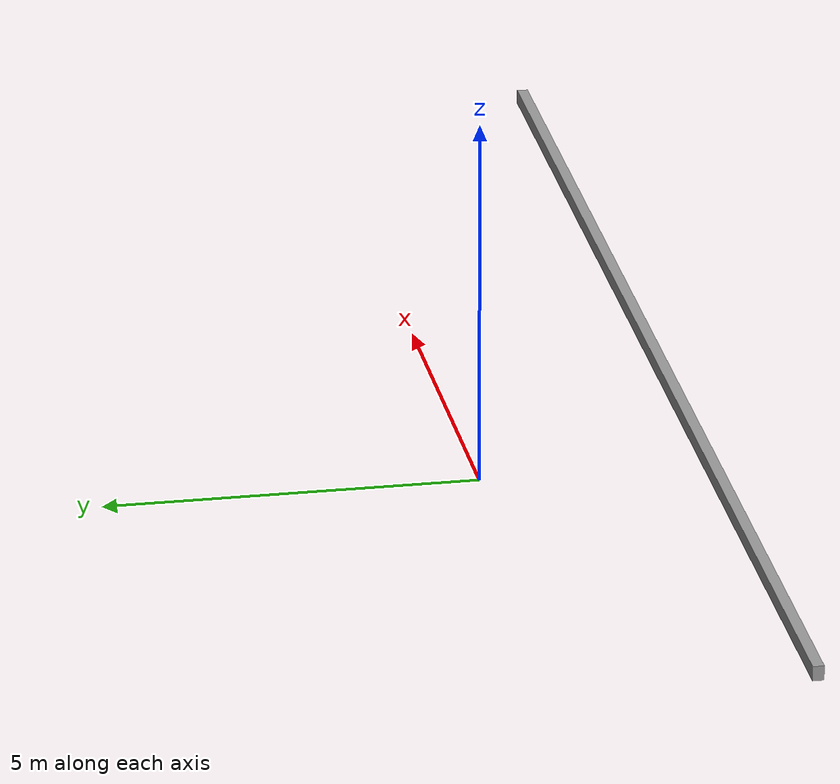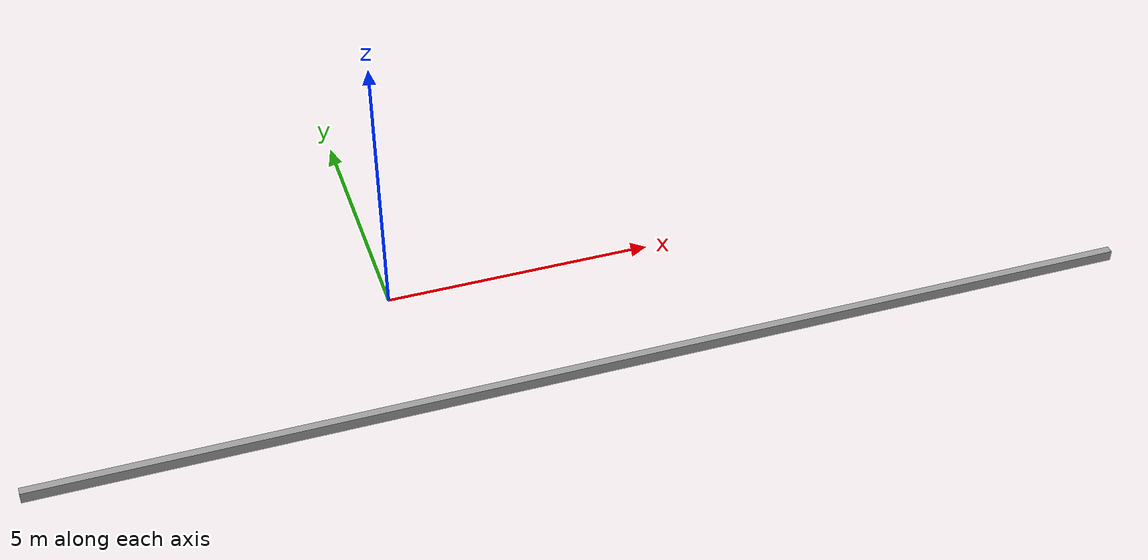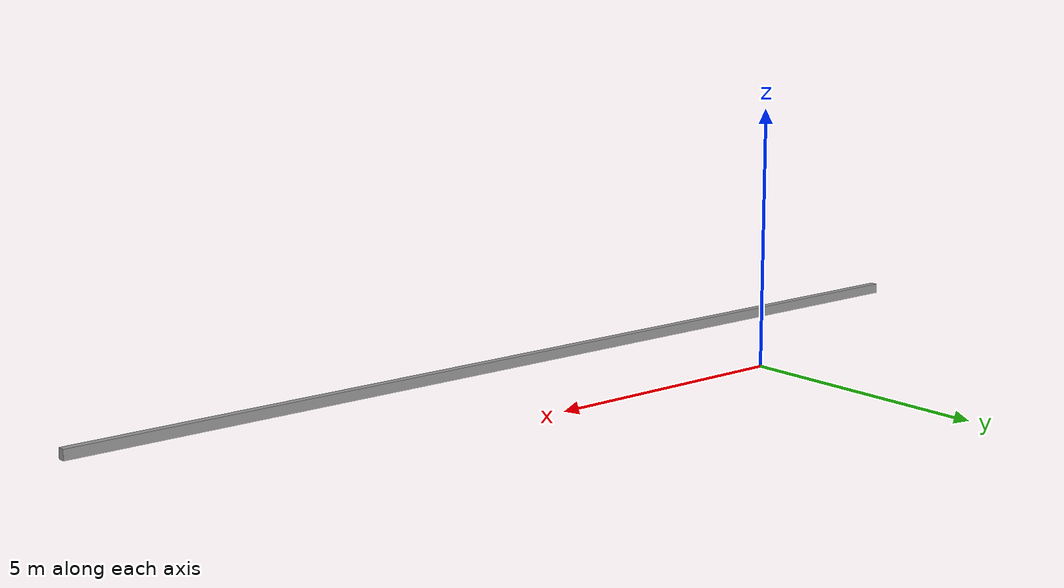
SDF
<?xml version='1.0'?>
<sdf version='1.7'>
  <model name='line'>
    <pose>3.137 -1.5645 0 0 -0 0</pose>
    <link name='Wall_17'>
      <collision name='Wall_17_Collision'>
        <geometry>
          <box>
            <size>20 0.15 0.2</size>
          </box>
        </geometry>
        <pose>0 0 0.1 0 -0 0</pose>
      </collision>
      <visual name='Wall_17_Visual'>
        <pose>0 0 0.1 0 -0 0</pose>
        <geometry>
          <box>
            <size>20 0.15 0.2</size>
          </box>
        </geometry>
        <material>
          <script>
            <uri>file://media/materials/scripts/gazebo.material</uri>
            <name>Gazebo/Grey</name>
          </script>
          <ambient>1 1 1 1</ambient>
        </material>
        <meta>
          <layer>0</layer>
        </meta>
      </visual>
      <pose>0 -1.4895 0 0 -0 0</pose>
    </link>
    <static>1</static>
  </model>
</sdf>
